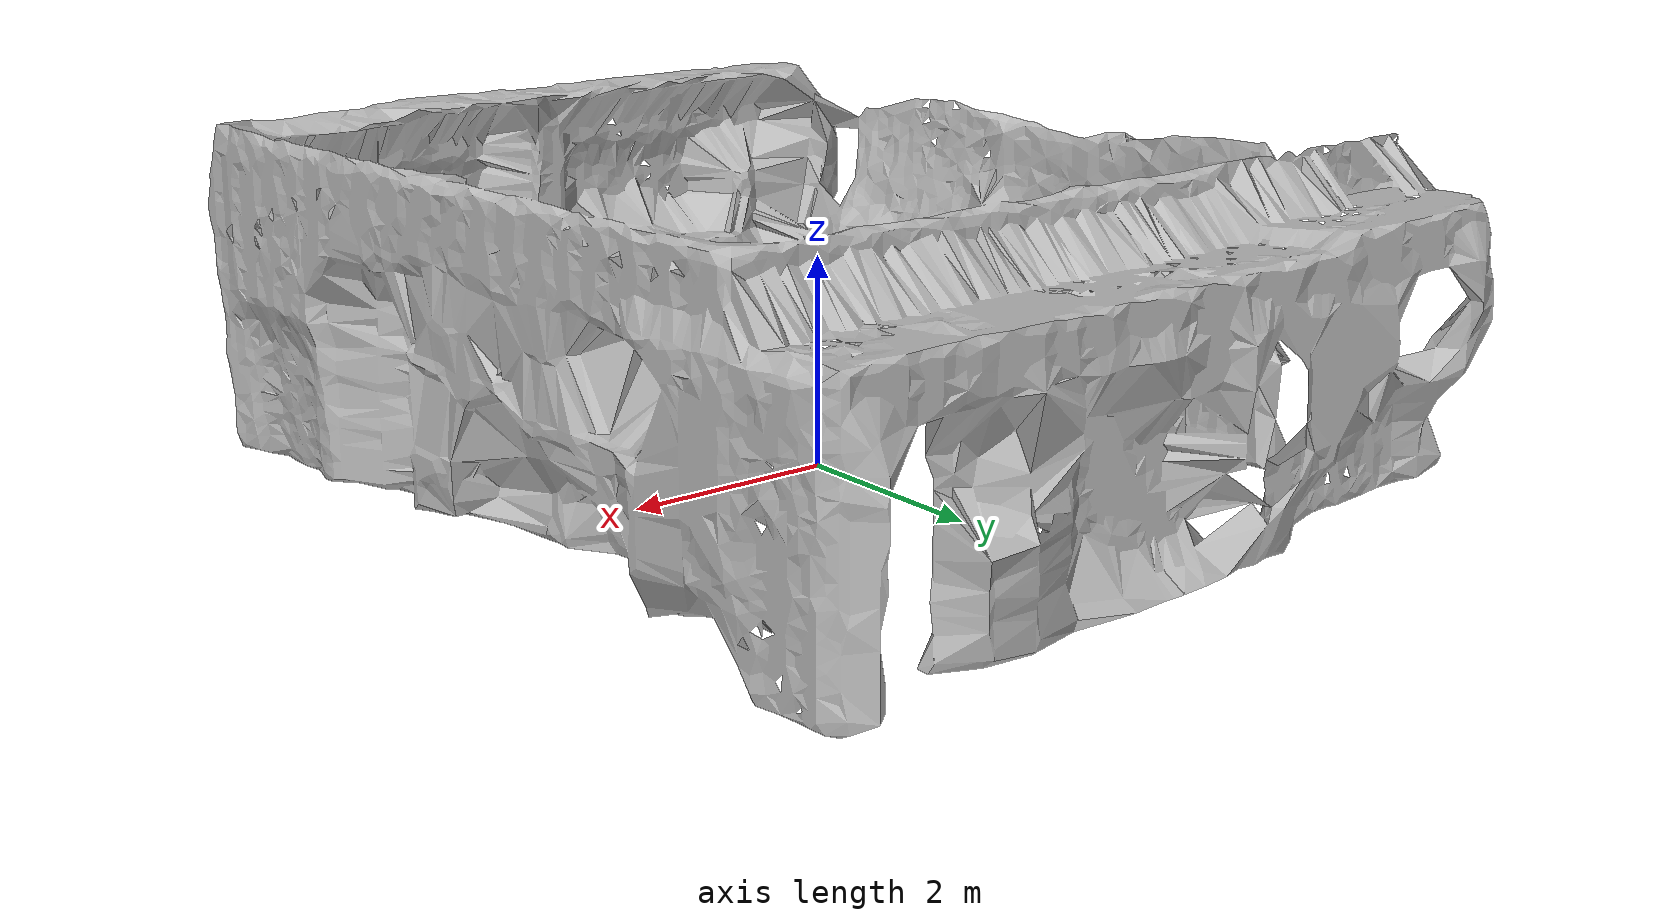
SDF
<?xml version="1.0" encoding="UTF-8" ?>
<sdf version="1.4">
<world name="default">
    <scene>
      <ambient>0.5 0.5 0.5 1</ambient>
      <background>0.5 0.5 0.5 1</background>
      <shadows>false</shadows>
    </scene>

    <light type="directional" name="directional_light_1">
      <pose>0 20 20 0.1 0.1 0</pose>
      <diffuse>1 1 1 1</diffuse>
      <specular>1 1 1 1</specular>
      <attenuation>
        <range>300</range>
      </attenuation>
      <direction>0.1 0.1 -1</direction>
      <cast_shadows>false</cast_shadows>
    </light>

     <model name="environment_model">
      <link name="environment_model_link">
        <pose>0 0 1.2 0 0 3.14159265</pose>
        <collision name="environment_model_collision">
          <geometry>
            <mesh>
              <uri>file:///home/peter/ros/catkin_ws/src/save_octomap/pcd/file_con_one_scan_clean8_50.dae</uri>
              <scale>1 1 1</scale>
            </mesh>
          </geometry>
        </collision>
        <visual name="environment_model_visual" cast_shadows="false">
          <geometry>
            <mesh>
              <uri>file:///home/peter/ros/catkin_ws/src/save_octomap/pcd/file_con_one_scan_clean8_50.dae</uri>
              <scale>1 1 1</scale>
            </mesh>
          </geometry>
	  <cast_shadows>false</cast_shadows>
        </visual>
      </link>
      <static>true</static>
    </model>

    <!-- Ground Plane -->
      <model name="plane1_model" static="true">
      <link name="body">
        <collision name="geom_1">
          <geometry>
            <plane normal="0 0 1"/>
          </geometry>
          <surface>
            <friction>
              <ode mu="10.0" mu2="10.0" fdir1="0 0 0" slip1="0" slip2="0"/>
            </friction>
            <bounce restitution_coefficient="0" threshold="1000000.0"/>
            <contact>
              <ode soft_cfm="0" soft_erp="0.2" kp="1e10" kd="1" max_vel="100.0" min_depth="0.0001"/>
            </contact>
          </surface>
        </collision>

      </link>
    </model>

  </world>
</sdf>
